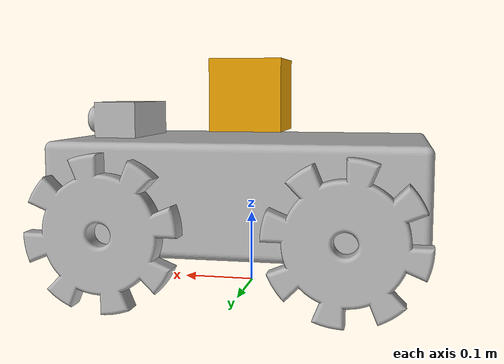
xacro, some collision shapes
<?xml version="1.0" ?>
<robot name="Fusion" xmlns:xacro="http://www.ros.org/wiki/xacro">

<xacro:include filename="$(find Fusion_description)/urdf/materials.xacro" />
<xacro:include filename="$(find Fusion_description)/urdf/Fusion.trans" />
<xacro:include filename="$(find Fusion_description)/urdf/Fusion.gazebo" />
<link name="base_link">
  <inertial>
    <origin xyz="-5.1708179154697355e-17 -2.5854089577348678e-17 0.13485368460228686" rpy="0 0 0"/>
    <mass value="176.7341823442297"/>
    <inertia ixx="1.662836" iyy="4.000505" izz="5.005076" ixy="0.0" iyz="0.0" ixz="0.0"/>
  </inertial>
  <visual>
    <origin xyz="0 0 0" rpy="0 0 0"/>
    <geometry>
      <mesh filename="package://Fusion_description/meshes/base_link.stl" scale="0.001 0.001 0.001"/>
    </geometry>
    <material name="silver"/>
  </visual>
  <collision>
    <origin xyz="0 0 0" rpy="0 0 0"/>
    <geometry>
      <mesh filename="package://Fusion_description/meshes/base_link.stl" scale="0.001 0.001 0.001"/>
    </geometry>
  </collision>
</link>

<link name="gear_FR_1_1">
  <inertial>
    <origin xyz="-2.767675533199565e-10 -0.015000000036919703 -3.5032517858857304e-09" rpy="0 0 0"/>
    <mass value="5.525627860602003"/>
    <inertia ixx="0.012263" iyy="0.023718" izz="0.012263" ixy="-0.0" iyz="-0.0" ixz="-0.0"/>
  </inertial>
  <visual>
    <origin xyz="-0.15 0.18 -0.1" rpy="0 0 0"/>
    <geometry>
      <mesh filename="package://Fusion_description/meshes/gear_FR_1_1.stl" scale="0.001 0.001 0.001"/>
    </geometry>
    <material name="silver"/>
  </visual>
  <collision>
    <origin xyz="-0.15 0.18 -0.1" rpy="0 0 0"/>
    <geometry>
      <mesh filename="package://Fusion_description/meshes/gear_FR_1_1.stl" scale="0.001 0.001 0.001"/>
    </geometry>
  </collision>
</link>

<link name="gear_RR_1_1">
  <inertial>
    <origin xyz="-2.7651933520722594e-10 -0.015000000036919703 3.502718823322759e-09" rpy="0 0 0"/>
    <mass value="5.525627860611518"/>
    <inertia ixx="0.012263" iyy="0.023718" izz="0.012263" ixy="-0.0" iyz="0.0" ixz="0.0"/>
  </inertial>
  <visual>
    <origin xyz="0.15 0.18 -0.1" rpy="0 0 0"/>
    <geometry>
      <mesh filename="package://Fusion_description/meshes/gear_RR_1_1.stl" scale="0.001 0.001 0.001"/>
    </geometry>
    <material name="silver"/>
  </visual>
  <collision>
    <origin xyz="0.15 0.18 -0.1" rpy="0 0 0"/>
    <geometry>
      <mesh filename="package://Fusion_description/meshes/gear_RR_1_1.stl" scale="0.001 0.001 0.001"/>
    </geometry>
  </collision>
</link>

<link name="gear_FL_1_1">
  <inertial>
    <origin xyz="-2.7677701797124143e-10 0.014999999963080213 -3.5026847672314787e-09" rpy="0 0 0"/>
    <mass value="5.525627860473773"/>
    <inertia ixx="0.012263" iyy="0.023718" izz="0.012263" ixy="-0.0" iyz="-0.0" ixz="-0.0"/>
  </inertial>
  <visual>
    <origin xyz="-0.15 -0.18 -0.1" rpy="0 0 0"/>
    <geometry>
      <mesh filename="package://Fusion_description/meshes/gear_FL_1_1.stl" scale="0.001 0.001 0.001"/>
    </geometry>
    <material name="silver"/>
  </visual>
  <collision>
    <origin xyz="-0.15 -0.18 -0.1" rpy="0 0 0"/>
    <geometry>
      <mesh filename="package://Fusion_description/meshes/gear_FL_1_1.stl" scale="0.001 0.001 0.001"/>
    </geometry>
  </collision>
</link>

<link name="gear_RL_1_1">
  <inertial>
    <origin xyz="-2.766578355295479e-10 0.014999999963080102 3.502646631070583e-09" rpy="0 0 0"/>
    <mass value="5.525627860460059"/>
    <inertia ixx="0.012263" iyy="0.023718" izz="0.012263" ixy="-0.0" iyz="0.0" ixz="0.0"/>
  </inertial>
  <visual>
    <origin xyz="0.15 -0.18 -0.1" rpy="0 0 0"/>
    <geometry>
      <mesh filename="package://Fusion_description/meshes/gear_RL_1_1.stl" scale="0.001 0.001 0.001"/>
    </geometry>
    <material name="silver"/>
  </visual>
  <collision>
    <origin xyz="0.15 -0.18 -0.1" rpy="0 0 0"/>
    <geometry>
      <mesh filename="package://Fusion_description/meshes/gear_RL_1_1.stl" scale="0.001 0.001 0.001"/>
    </geometry>
  </collision>
</link>

<link name="camera_1_1">
  <inertial>
    <origin xyz="-0.05117095755785803 -0.010000000000000007 0.024999999999999994" rpy="0 0 0"/>
    <mass value="3.6539734209629233"/>
    <inertia ixx="0.006576" iyy="0.002215" izz="0.00735" ixy="0.0" iyz="-0.0" ixz="0.0"/>
  </inertial>
  <visual>
    <origin xyz="-0.24 -0.0 -0.21" rpy="0 0 0"/>
    <geometry>
      <mesh filename="package://Fusion_description/meshes/camera_1_1.stl" scale="0.001 0.001 0.001"/>
    </geometry>
    <material name="silver"/>
  </visual>
  <collision>
    <origin xyz="-0.24 -0.0 -0.21" rpy="0 0 0"/>
    <geometry>
      <mesh filename="package://Fusion_description/meshes/camera_1_1.stl" scale="0.001 0.001 0.001"/>
    </geometry>
  </collision>
</link>

<joint name="Revolute6" type="continuous">
  <origin xyz="0.15 -0.18 0.1" rpy="0 0 0"/>
  <parent link="base_link"/>
  <child link="gear_FR_1_1"/>
  <axis xyz="0.0 1.0 0.0"/>
</joint>

<joint name="Revolute7" type="continuous">
  <origin xyz="-0.15 -0.18 0.1" rpy="0 0 0"/>
  <parent link="base_link"/>
  <child link="gear_RR_1_1"/>
  <axis xyz="0.0 1.0 0.0"/>
</joint>

<joint name="Revolute8" type="continuous">
  <origin xyz="0.15 0.18 0.1" rpy="0 0 0"/>
  <parent link="base_link"/>
  <child link="gear_FL_1_1"/>
  <axis xyz="0.0 1.0 0.0"/>
</joint>

<joint name="Revolute9" type="continuous">
  <origin xyz="-0.15 0.18 0.1" rpy="0 0 0"/>
  <parent link="base_link"/>
  <child link="gear_RL_1_1"/>
  <axis xyz="0.0 1.0 0.0"/>
</joint>

<joint name="Rigid10" type="fixed">
  <origin xyz="0.24 0.0 0.21" rpy="0 0 0"/>
  <parent link="base_link"/>
  <child link="camera_1_1"/>
</joint>

</robot>

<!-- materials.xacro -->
<robot name="Fusion" xmlns:xacro="http://www.ros.org/wiki/xacro" >

<material name="silver">
  <color rgba="0.700 0.700 0.700 1.000"/>
</material>

</robot>

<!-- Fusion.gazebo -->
<robot name="Fusion" xmlns:xacro="http://www.ros.org/wiki/xacro" >

<xacro:property name="body_color" value="Gazebo/Silver" />

<gazebo>
  <plugin name="control" filename="libgazebo_ros_control.so"/>
</gazebo>
<gazebo reference="base_link">
  <material>${body_color}</material>
  <mu1>0.2</mu1>
  <mu2>0.2</mu2>
  <selfCollide>true</selfCollide>
  <gravity>true</gravity>
</gazebo>

<gazebo reference="gear_FR_1_1">
  <material>${body_color}</material>
  <mu1>0.2</mu1>
  <mu2>0.2</mu2>
  <selfCollide>true</selfCollide>
</gazebo>

<gazebo reference="gear_RR_1_1">
  <material>${body_color}</material>
  <mu1>15000</mu1>
  <mu2>15000</mu2>
  <selfCollide>true</selfCollide>
</gazebo>

<gazebo reference="gear_FL_1_1">
  <material>${body_color}</material>
  <mu1>0.2</mu1>
  <mu2>0.2</mu2>
  <selfCollide>true</selfCollide>
</gazebo>

<gazebo reference="gear_RL_1_1">
  <material>${body_color}</material>
  <mu1>15000</mu1>
  <mu2>15000</mu2>
  <selfCollide>true</selfCollide>
</gazebo>

<gazebo reference="camera_1_1">
  <material>${body_color}</material>
  <mu1>0.2</mu1>
  <mu2>0.2</mu2>
  <selfCollide>true</selfCollide>
</gazebo>

<gazebo>
  <plugin name="skid_steer_drive_controller" filename="libgazebo_ros_skid_steer_drive.so">
    <updateRate>100.0</updateRate>
    <robotNamespace>/</robotNamespace>
    <leftFrontJoint>Revolute8</leftFrontJoint>
    <rightFrontJoint>Revolute6</rightFrontJoint>
    <leftRearJoint>Revolute9</leftRearJoint>
    <rightRearJoint>Revolute7</rightRearJoint>
    <wheelSeparation>0.3</wheelSeparation>
    <wheelDiameter>0.2</wheelDiameter>
    <robotBaseFrame>base_link</robotBaseFrame>
    <torque>20</torque>
    <topicName>cmd_vel</topicName>
    <broadcastTF>false</broadcastTF>
  </plugin>
</gazebo>

 <joint name="hokuyo_joint" type="fixed">
    <axis xyz="0 1 0" />
    <origin xyz="0 0 0.27" rpy="0 0 0"/>
    <parent link="base_link"/>
    <child link="hokuyo_link"/>
  </joint>

  <!-- Hokuyo Laser -->
  <link name="hokuyo_link">
    <collision>
      <origin xyz="0 0 0" rpy="0 0 0"/>
      <geometry>
    <box size="0.1 0.1 0.1"/>
      </geometry>
    </collision>

    <visual>
      <origin xyz="0 0 0" rpy="0 0 0"/>
      <geometry>
        <mesh filename="package://rrbot_description/meshes/hokuyo.dae"/>
      </geometry>
    </visual>

    <inertial>
      <mass value="1e-5" />
      <origin xyz="0 0 0" rpy="0 0 0"/>
      <inertia ixx="1e-6" ixy="0" ixz="0" iyy="1e-6" iyz="0" izz="1e-6" />
    </inertial>
  </link>

  <!-- hokuyo -->
  <gazebo reference="hokuyo_link">
    <sensor type="ray" name="head_hokuyo_sensor">
      <pose>0 0 0 0 0 0</pose>
      <visualize>true</visualize>
      <update_rate>40</update_rate>
      <ray>
        <scan>
          <horizontal>
            <samples>720</samples>
            <resolution>1</resolution>
            <min_angle>-1.570796</min_angle>
            <max_angle>1.570796</max_angle>
          </horizontal>
        </scan>
        <range>
          <min>0.10</min>
          <max>3.0</max>
          <resolution>0.01</resolution>
        </range>
        <noise>
          <type>gaussian</type>
          <mean>0.0</mean>
          <stddev>0.01</stddev>
        </noise>
      </ray>
      <plugin name="gazebo_ros_head_hokuyo_controller" filename="libgazebo_ros_laser.so">
        <topicName>/scan</topicName>
        <frameName>hokuyo_link</frameName>
      </plugin>
    </sensor>
  </gazebo>

<!-- camera -->
  <gazebo reference="camera_1_1">
    <sensor type="camera" name="camera1">
      <update_rate>30.0</update_rate>
      <camera name="head">
        <horizontal_fov>1.3962634</horizontal_fov>
        <image>
          <width>800</width>
          <height>800</height>
          <format>R8G8B8</format>
        </image>
        <clip>
          <near>0.02</near>
          <far>300</far>
        </clip>
        <noise>
          <type>gaussian</type>
          <!-- Noise is sampled independently per pixel on each frame.
               That pixel's noise value is added to each of its color
               channels, which at that point lie in the range [0,1]. -->
          <mean>0.0</mean>
          <stddev>0.007</stddev>
        </noise>
      </camera>
      <plugin name="camera_controller" filename="libgazebo_ros_camera.so">
        <alwaysOn>true</alwaysOn>
        <updateRate>0.0</updateRate>
        <cameraName>rrbot/camera1</cameraName>
        <imageTopicName>image_raw</imageTopicName>
        <cameraInfoTopicName>camera_info</cameraInfoTopicName>
        <frameName>camera_1_1</frameName>
        <hackBaseline>0.07</hackBaseline>
        <distortionK1>0.0</distortionK1>
        <distortionK2>0.0</distortionK2>
        <distortionK3>0.0</distortionK3>
        <distortionT1>0.0</distortionT1>
        <distortionT2>0.0</distortionT2>
      </plugin>
    </sensor>
  </gazebo>

</robot>
